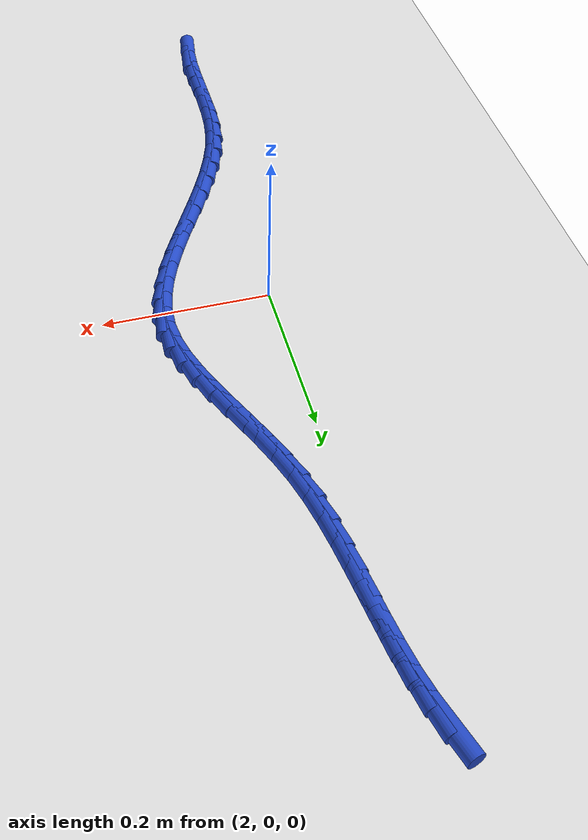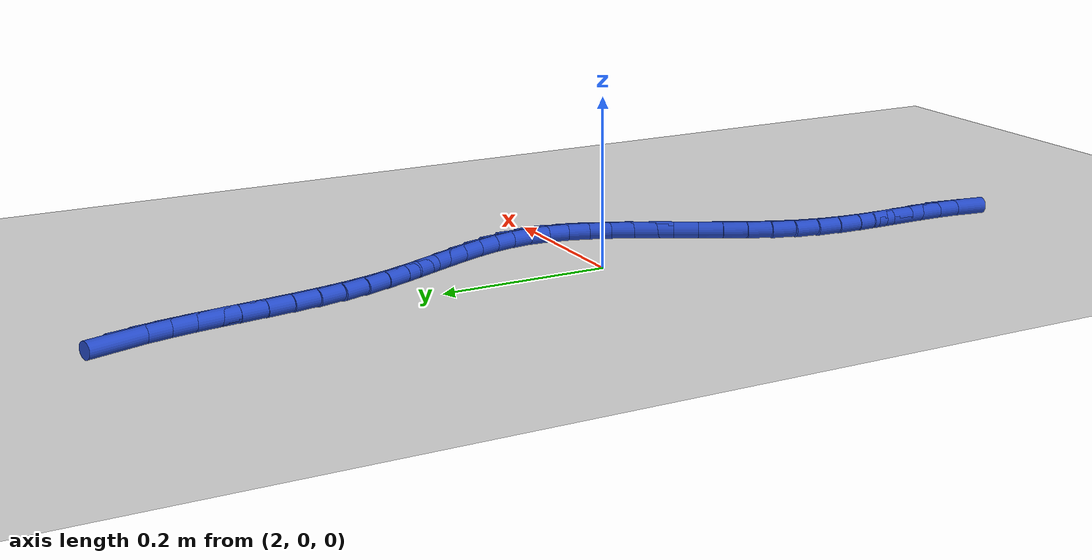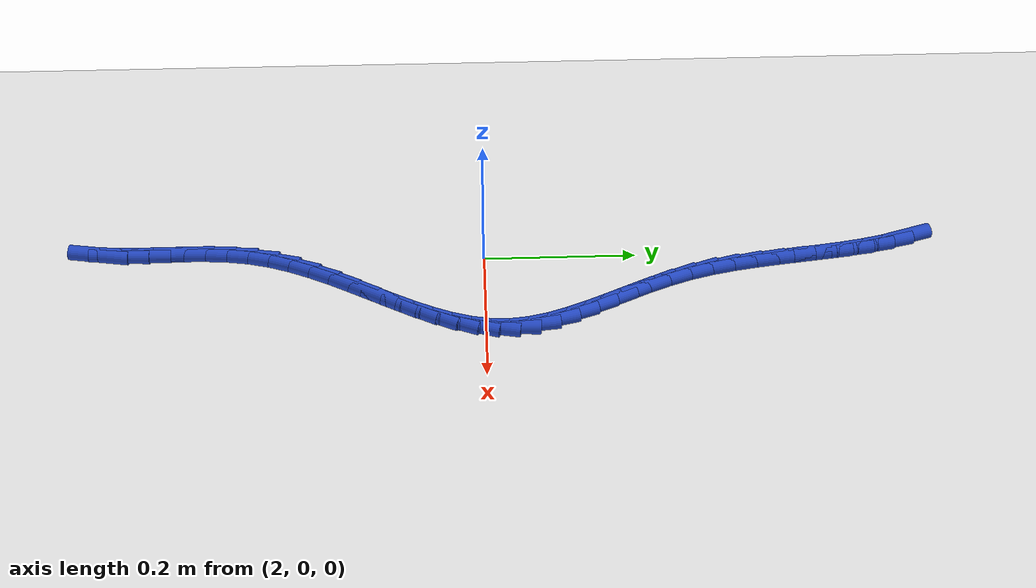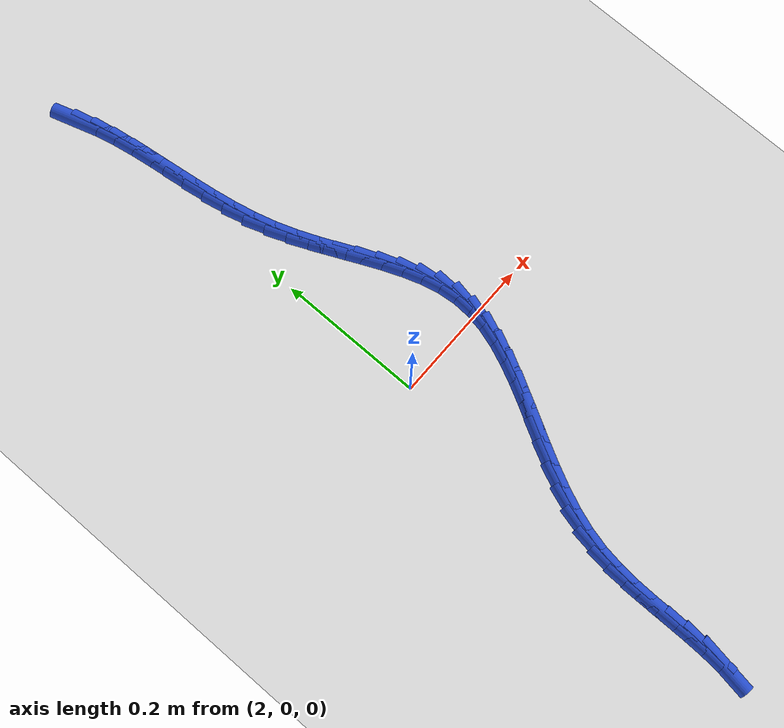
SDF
<sdf version="1.6">
 <world name="default">
  <model name="ground_plane">
   <static>1</static>
   <link name="link">
    <collision name="collision">
     <geometry><plane><normal>0 0 1</normal><size>100 100</size></plane></geometry>
     <surface><friction><ode><mu>100</mu><mu2>50</mu2></ode></friction></surface>
    </collision>
    <visual name="visual">
     <cast_shadows>0</cast_shadows>
     <geometry><plane><normal>0 0 1</normal><size>100 100</size></plane></geometry>
     <material>
      <script><uri>file://media/materials/scripts/gazebo.material</uri><name>Gazebo/WhiteGlow</name></script>
     </material>
    </visual>
   </link>
  </model>
  <model name="line">
   <link name="link_100">
    <pose>1.9871031348854646 0.5541055801154483 0.01 0 1.57 -1.270023676637597</pose>
    <collision name="collision">
     <geometry><cylinder><radius>0.01</radius><length>0.08</length></cylinder></geometry>
    </collision>
    <visual name="visual">
     <material>
      <script><name>Gazebo/Blue</name><uri>file://media/materials/scripts/gazebo.material</uri></script>
     </material>
     <geometry><cylinder><radius>0.01</radius><length>0.08</length></cylinder></geometry>
    </visual>
   </link>
   <link name="link_101">
    <pose>1.9949645032582954 0.5287612915799784 0.01 0 1.57 -1.3407908524117054</pose>
    <collision name="collision">
     <geometry><cylinder><radius>0.01</radius><length>0.08</length></cylinder></geometry>
    </collision>
    <visual name="visual">
     <material>
      <script><name>Gazebo/Blue</name><uri>file://media/materials/scripts/gazebo.material</uri></script>
     </material>
     <geometry><cylinder><radius>0.01</radius><length>0.08</length></cylinder></geometry>
    </visual>
   </link>
   <link name="link_102">
    <pose>2.0012184182161907 0.5020521819858373 0.01 0 1.57 -1.3911099683122694</pose>
    <collision name="collision">
     <geometry><cylinder><radius>0.01</radius><length>0.08</length></cylinder></geometry>
    </collision>
    <visual name="visual">
     <material>
      <script><name>Gazebo/Blue</name><uri>file://media/materials/scripts/gazebo.material</uri></script>
     </material>
     <geometry><cylinder><radius>0.01</radius><length>0.08</length></cylinder></geometry>
    </visual>
   </link>
   <link name="link_103">
    <pose>2.0062749421890165 0.4742148647698673 0.01 0 1.57 -1.4232731560652194</pose>
    <collision name="collision">
     <geometry><cylinder><radius>0.01</radius><length>0.08</length></cylinder></geometry>
    </collision>
    <visual name="visual">
     <material>
      <script><name>Gazebo/Blue</name><uri>file://media/materials/scripts/gazebo.material</uri></script>
     </material>
     <geometry><cylinder><radius>0.01</radius><length>0.08</length></cylinder></geometry>
    </visual>
   </link>
   <link name="link_104">
    <pose>2.01054413760664 0.4454859533689107 0.01 0 1.57 -1.4391117024080922</pose>
    <collision name="collision">
     <geometry><cylinder><radius>0.01</radius><length>0.08</length></cylinder></geometry>
    </collision>
    <visual name="visual">
     <material>
      <script><name>Gazebo/Blue</name><uri>file://media/materials/scripts/gazebo.material</uri></script>
     </material>
     <geometry><cylinder><radius>0.01</radius><length>0.08</length></cylinder></geometry>
    </visual>
   </link>
   <link name="link_105">
    <pose>2.0144360668989276 0.416102061219811 0.01 0 1.57 -1.4398575911494707</pose>
    <collision name="collision">
     <geometry><cylinder><radius>0.01</radius><length>0.08</length></cylinder></geometry>
    </collision>
    <visual name="visual">
     <material>
      <script><name>Gazebo/Blue</name><uri>file://media/materials/scripts/gazebo.material</uri></script>
     </material>
     <geometry><cylinder><radius>0.01</radius><length>0.08</length></cylinder></geometry>
    </visual>
   </link>
   <link name="link_106">
    <pose>2.0183607924957445 0.38629980175940987 0.01 0 1.57 -1.426149867807569</pose>
    <collision name="collision">
     <geometry><cylinder><radius>0.01</radius><length>0.08</length></cylinder></geometry>
    </collision>
    <visual name="visual">
     <material>
      <script><name>Gazebo/Blue</name><uri>file://media/materials/scripts/gazebo.material</uri></script>
     </material>
     <geometry><cylinder><radius>0.01</radius><length>0.08</length></cylinder></geometry>
    </visual>
   </link>
   <link name="link_107">
    <pose>2.022728376826959 0.35631578842455014 0.01 0 1.57 -1.398104969451155</pose>
    <collision name="collision">
     <geometry><cylinder><radius>0.01</radius><length>0.08</length></cylinder></geometry>
    </collision>
    <visual name="visual">
     <material>
      <script><name>Gazebo/Blue</name><uri>file://media/materials/scripts/gazebo.material</uri></script>
     </material>
     <geometry><cylinder><radius>0.01</radius><length>0.08</length></cylinder></geometry>
    </visual>
   </link>
   <link name="link_108">
    <pose>2.027948882322436 0.32638663465207374 0.01 0 1.57 -1.3554306923694825</pose>
    <collision name="collision">
     <geometry><cylinder><radius>0.01</radius><length>0.08</length></cylinder></geometry>
    </collision>
    <visual name="visual">
     <material>
      <script><name>Gazebo/Blue</name><uri>file://media/materials/scripts/gazebo.material</uri></script>
     </material>
     <geometry><cylinder><radius>0.01</radius><length>0.08</length></cylinder></geometry>
    </visual>
   </link>
   <link name="link_109">
    <pose>2.0344323714120427 0.29674895387882405 0.01 0 1.57 -1.2976013203889751</pose>
    <collision name="collision">
     <geometry><cylinder><radius>0.01</radius><length>0.08</length></cylinder></geometry>
    </collision>
    <visual name="visual">
     <material>
      <script><name>Gazebo/Blue</name><uri>file://media/materials/scripts/gazebo.material</uri></script>
     </material>
     <geometry><cylinder><radius>0.01</radius><length>0.08</length></cylinder></geometry>
    </visual>
   </link>
   <link name="link_110">
    <pose>2.042588906525645 0.26763935954164325 0.01 0 1.57 -1.2298372731214133</pose>
    <collision name="collision">
     <geometry><cylinder><radius>0.01</radius><length>0.08</length></cylinder></geometry>
    </collision>
    <visual name="visual">
     <material>
      <script><name>Gazebo/Blue</name><uri>file://media/materials/scripts/gazebo.material</uri></script>
     </material>
     <geometry><cylinder><radius>0.01</radius><length>0.08</length></cylinder></geometry>
    </visual>
   </link>
   <link name="link_111">
    <pose>2.0526633353952928 0.23924599445592137 0.01 0 1.57 -1.1767904609510649</pose>
    <collision name="collision">
     <geometry><cylinder><radius>0.01</radius><length>0.08</length></cylinder></geometry>
    </collision>
    <visual name="visual">
     <material>
      <script><name>Gazebo/Blue</name><uri>file://media/materials/scripts/gazebo.material</uri></script>
     </material>
     <geometry><cylinder><radius>0.01</radius><length>0.08</length></cylinder></geometry>
    </visual>
   </link>
   <link name="link_112">
    <pose>2.064179677665 0.2115455251831238 0.01 0 1.57 -1.1450026921496925</pose>
    <collision name="collision">
     <geometry><cylinder><radius>0.01</radius><length>0.08</length></cylinder></geometry>
    </collision>
    <visual name="visual">
     <material>
      <script><name>Gazebo/Blue</name><uri>file://media/materials/scripts/gazebo.material</uri></script>
     </material>
     <geometry><cylinder><radius>0.01</radius><length>0.08</length></cylinder></geometry>
    </visual>
   </link>
   <link name="link_113">
    <pose>2.076465417704851 0.1844569588452698 0.01 0 1.57 -1.1345079735834305</pose>
    <collision name="collision">
     <geometry><cylinder><radius>0.01</radius><length>0.08</length></cylinder></geometry>
    </collision>
    <visual name="visual">
     <material>
      <script><name>Gazebo/Blue</name><uri>file://media/materials/scripts/gazebo.material</uri></script>
     </material>
     <geometry><cylinder><radius>0.01</radius><length>0.08</length></cylinder></geometry>
    </visual>
   </link>
   <link name="link_114">
    <pose>2.08884803551193 0.15789930128142773 0.01 0 1.57 -1.14608086233653</pose>
    <collision name="collision">
     <geometry><cylinder><radius>0.01</radius><length>0.08</length></cylinder></geometry>
    </collision>
    <visual name="visual">
     <material>
      <script><name>Gazebo/Blue</name><uri>file://media/materials/scripts/gazebo.material</uri></script>
     </material>
     <geometry><cylinder><radius>0.01</radius><length>0.08</length></cylinder></geometry>
    </visual>
   </link>
   <link name="link_115">
    <pose>2.1006550110833198 0.13179155833066586 0.01 0 1.57 -1.1815030028557039</pose>
    <collision name="collision">
     <geometry><cylinder><radius>0.01</radius><length>0.08</length></cylinder></geometry>
    </collision>
    <visual name="visual">
     <material>
      <script><name>Gazebo/Blue</name><uri>file://media/materials/scripts/gazebo.material</uri></script>
     </material>
     <geometry><cylinder><radius>0.01</radius><length>0.08</length></cylinder></geometry>
    </visual>
   </link>
   <link name="link_116">
    <pose>2.111213824416103 0.10605273583205342 0.01 0 1.57 -1.243592330801454</pose>
    <collision name="collision">
     <geometry><cylinder><radius>0.01</radius><length>0.08</length></cylinder></geometry>
    </collision>
    <visual name="visual">
     <material>
      <script><name>Gazebo/Blue</name><uri>file://media/materials/scripts/gazebo.material</uri></script>
     </material>
     <geometry><cylinder><radius>0.01</radius><length>0.08</length></cylinder></geometry>
    </visual>
   </link>
   <link name="link_117">
    <pose>2.119851955507363 0.08060183962465882 0.01 0 1.57 -1.3357616536077086</pose>
    <collision name="collision">
     <geometry><cylinder><radius>0.01</radius><length>0.08</length></cylinder></geometry>
    </collision>
    <visual name="visual">
     <material>
      <script><name>Gazebo/Blue</name><uri>file://media/materials/scripts/gazebo.material</uri></script>
     </material>
     <geometry><cylinder><radius>0.01</radius><length>0.08</length></cylinder></geometry>
    </visual>
   </link>
   <link name="link_118">
    <pose>2.125896884354183 0.0553578755475507 0.01 0 1.57 -1.4605986670731048</pose>
    <collision name="collision">
     <geometry><cylinder><radius>0.01</radius><length>0.08</length></cylinder></geometry>
    </collision>
    <visual name="visual">
     <material>
      <script><name>Gazebo/Blue</name><uri>file://media/materials/scripts/gazebo.material</uri></script>
     </material>
     <geometry><cylinder><radius>0.01</radius><length>0.08</length></cylinder></geometry>
    </visual>
   </link>
   <link name="link_119">
    <pose>2.128676090953645 0.030239849439797357 0.01 0 1.57 1.5293416978469656</pose>
    <collision name="collision">
     <geometry><cylinder><radius>0.01</radius><length>0.08</length></cylinder></geometry>
    </collision>
    <visual name="visual">
     <material>
      <script><name>Gazebo/Blue</name><uri>file://media/materials/scripts/gazebo.material</uri></script>
     </material>
     <geometry><cylinder><radius>0.01</radius><length>0.08</length></cylinder></geometry>
    </visual>
   </link>
   <link name="link_120">
    <pose>2.127636255893484 0.005170529779674584 0.01 0 1.57 1.3885860308831348</pose>
    <collision name="collision">
     <geometry><cylinder><radius>0.01</radius><length>0.08</length></cylinder></geometry>
    </collision>
    <visual name="visual">
     <material>
      <script><name>Gazebo/Blue</name><uri>file://media/materials/scripts/gazebo.material</uri></script>
     </material>
     <geometry><cylinder><radius>0.01</radius><length>0.08</length></cylinder></geometry>
    </visual>
   </link>
   <link name="link_121">
    <pose>2.123016488028182 -0.01990230147391768 0.01 0 1.57 1.2756245637048258</pose>
    <collision name="collision">
     <geometry><cylinder><radius>0.01</radius><length>0.08</length></cylinder></geometry>
    </collision>
    <visual name="visual">
     <material>
      <script><name>Gazebo/Blue</name><uri>file://media/materials/scripts/gazebo.material</uri></script>
     </material>
     <geometry><cylinder><radius>0.01</radius><length>0.08</length></cylinder></geometry>
    </visual>
   </link>
   <link name="link_122">
    <pose>2.1153791548056526 -0.04502065850779593 0.01 0 1.57 1.1899742821322803</pose>
    <collision name="collision">
     <geometry><cylinder><radius>0.01</radius><length>0.08</length></cylinder></geometry>
    </collision>
    <visual name="visual">
     <material>
      <script><name>Gazebo/Blue</name><uri>file://media/materials/scripts/gazebo.material</uri></script>
     </material>
     <geometry><cylinder><radius>0.01</radius><length>0.08</length></cylinder></geometry>
    </visual>
   </link>
   <link name="link_123">
    <pose>2.1052875771359 -0.07022652541216544 0.01 0 1.57 1.129017345263599</pose>
    <collision name="collision">
     <geometry><cylinder><radius>0.01</radius><length>0.08</length></cylinder></geometry>
    </collision>
    <visual name="visual">
     <material>
      <script><name>Gazebo/Blue</name><uri>file://media/materials/scripts/gazebo.material</uri></script>
     </material>
     <geometry><cylinder><radius>0.01</radius><length>0.08</length></cylinder></geometry>
    </visual>
   </link>
   <link name="link_124">
    <pose>2.0933050759289262 -0.09556188627723153 0.01 0 1.57 1.0898416261258865</pose>
    <collision name="collision">
     <geometry><cylinder><radius>0.01</radius><length>0.08</length></cylinder></geometry>
    </collision>
    <visual name="visual">
     <material>
      <script><name>Gazebo/Blue</name><uri>file://media/materials/scripts/gazebo.material</uri></script>
     </material>
     <geometry><cylinder><radius>0.01</radius><length>0.08</length></cylinder></geometry>
    </visual>
   </link>
   <link name="link_125">
    <pose>2.0799949720947315 -0.1210687251932001 0.01 0 1.57 1.070098283755633</pose>
    <collision name="collision">
     <geometry><cylinder><radius>0.01</radius><length>0.08</length></cylinder></geometry>
    </collision>
    <visual name="visual">
     <material>
      <script><name>Gazebo/Blue</name><uri>file://media/materials/scripts/gazebo.material</uri></script>
     </material>
     <geometry><cylinder><radius>0.01</radius><length>0.08</length></cylinder></geometry>
    </visual>
   </link>
   <link name="link_126">
    <pose>2.0659205865433226 -0.14678902625027515 0.01 0 1.57 1.0682875997632608</pose>
    <collision name="collision">
     <geometry><cylinder><radius>0.01</radius><length>0.08</length></cylinder></geometry>
    </collision>
    <visual name="visual">
     <material>
      <script><name>Gazebo/Blue</name><uri>file://media/materials/scripts/gazebo.material</uri></script>
     </material>
     <geometry><cylinder><radius>0.01</radius><length>0.08</length></cylinder></geometry>
    </visual>
   </link>
   <link name="link_127">
    <pose>2.0516452401847003 -0.1727647735386626 0.01 0 1.57 1.0837883834766044</pose>
    <collision name="collision">
     <geometry><cylinder><radius>0.01</radius><length>0.08</length></cylinder></geometry>
    </collision>
    <visual name="visual">
     <material>
      <script><name>Gazebo/Blue</name><uri>file://media/materials/scripts/gazebo.material</uri></script>
     </material>
     <geometry><cylinder><radius>0.01</radius><length>0.08</length></cylinder></geometry>
    </visual>
   </link>
   <link name="link_128">
    <pose>2.037732253928867 -0.19903795114856776 0.01 0 1.57 1.1167837851365747</pose>
    <collision name="collision">
     <geometry><cylinder><radius>0.01</radius><length>0.08</length></cylinder></geometry>
    </collision>
    <visual name="visual">
     <material>
      <script><name>Gazebo/Blue</name><uri>file://media/materials/scripts/gazebo.material</uri></script>
     </material>
     <geometry><cylinder><radius>0.01</radius><length>0.08</length></cylinder></geometry>
    </visual>
   </link>
   <link name="link_129">
    <pose>2.024744948685826 -0.2256505431701959 0.01 0 1.57 1.1681146154270803</pose>
    <collision name="collision">
     <geometry><cylinder><radius>0.01</radius><length>0.08</length></cylinder></geometry>
    </collision>
    <visual name="visual">
     <material>
      <script><name>Gazebo/Blue</name><uri>file://media/materials/scripts/gazebo.material</uri></script>
     </material>
     <geometry><cylinder><radius>0.01</radius><length>0.08</length></cylinder></geometry>
    </visual>
   </link>
   <link name="link_130">
    <pose>2.0132466453655797 -0.2526445336937523 0.01 0 1.57 1.2390069883447714</pose>
    <collision name="collision">
     <geometry><cylinder><radius>0.01</radius><length>0.08</length></cylinder></geometry>
    </collision>
    <visual name="visual">
     <material>
      <script><name>Gazebo/Blue</name><uri>file://media/materials/scripts/gazebo.material</uri></script>
     </material>
     <geometry><cylinder><radius>0.01</radius><length>0.08</length></cylinder></geometry>
    </visual>
   </link>
   <link name="link_131">
    <pose>2.003800664878131 -0.28006190680944226 0.01 0 1.57 1.3303797048263288</pose>
    <collision name="collision">
     <geometry><cylinder><radius>0.01</radius><length>0.08</length></cylinder></geometry>
    </collision>
    <visual name="visual">
     <material>
      <script><name>Gazebo/Blue</name><uri>file://media/materials/scripts/gazebo.material</uri></script>
     </material>
     <geometry><cylinder><radius>0.01</radius><length>0.08</length></cylinder></geometry>
    </visual>
   </link>
   <link name="link_132">
    <pose>1.996965197318818 -0.307943757070951 0.01 0 1.57 1.4270359421169758</pose>
    <collision name="collision">
     <geometry><cylinder><radius>0.01</radius><length>0.08</length></cylinder></geometry>
    </collision>
    <visual name="visual">
     <material>
      <script><name>Gazebo/Blue</name><uri>file://media/materials/scripts/gazebo.material</uri></script>
     </material>
     <geometry><cylinder><radius>0.01</radius><length>0.08</length></cylinder></geometry>
    </visual>
   </link>
   <link name="link_133">
    <pose>1.9928666975510843 -0.3362563284904437 0.01 0 1.57 1.501370962863606</pose>
    <collision name="collision">
     <geometry><cylinder><radius>0.01</radius><length>0.08</length></cylinder></geometry>
    </collision>
    <visual name="visual">
     <material>
      <script><name>Gazebo/Blue</name><uri>file://media/materials/scripts/gazebo.material</uri></script>
     </material>
     <geometry><cylinder><radius>0.01</radius><length>0.08</length></cylinder></geometry>
    </visual>
   </link>
   <link name="link_134">
    <pose>1.9908793877854385 -0.3648354494520354 0.01 0 1.57 1.5506587647861148</pose>
    <collision name="collision">
     <geometry><cylinder><radius>0.01</radius><length>0.08</length></cylinder></geometry>
    </collision>
    <visual name="visual">
     <material>
      <script><name>Gazebo/Blue</name><uri>file://media/materials/scripts/gazebo.material</uri></script>
     </material>
     <geometry><cylinder><radius>0.01</radius><length>0.08</length></cylinder></geometry>
    </visual>
   </link>
   <link name="link_135">
    <pose>1.9903019978378609 -0.3935038601177237 0.01 0 1.57 -1.5662037186621223</pose>
    <collision name="collision">
     <geometry><cylinder><radius>0.01</radius><length>0.08</length></cylinder></geometry>
    </collision>
    <visual name="visual">
     <material>
      <script><name>Gazebo/Blue</name><uri>file://media/materials/scripts/gazebo.material</uri></script>
     </material>
     <geometry><cylinder><radius>0.01</radius><length>0.08</length></cylinder></geometry>
    </visual>
   </link>
   <link name="link_136">
    <pose>1.990433257524332 -0.42208430064950553 0.01 0 1.57 -1.565900088134308</pose>
    <collision name="collision">
     <geometry><cylinder><radius>0.01</radius><length>0.08</length></cylinder></geometry>
    </collision>
    <visual name="visual">
     <material>
      <script><name>Gazebo/Blue</name><uri>file://media/materials/scripts/gazebo.material</uri></script>
     </material>
     <geometry><cylinder><radius>0.01</radius><length>0.08</length></cylinder></geometry>
    </visual>
   </link>
   <link name="link_137">
    <pose>1.9905718966608321 -0.4503995112093783 0.01 0 1.57 1.5508779926520597</pose>
    <collision name="collision">
     <geometry><cylinder><radius>0.01</radius><length>0.08</length></cylinder></geometry>
    </collision>
    <visual name="visual">
     <material>
      <script><name>Gazebo/Blue</name><uri>file://media/materials/scripts/gazebo.material</uri></script>
     </material>
     <geometry><cylinder><radius>0.01</radius><length>0.08</length></cylinder></geometry>
    </visual>
   </link>
   <link name="link_138">
    <pose>1.9900166450633427 -0.4782722319593393 0.01 0 1.57 1.4993511691411618</pose>
    <collision name="collision">
     <geometry><cylinder><radius>0.01</radius><length>0.08</length></cylinder></geometry>
    </collision>
    <visual name="visual">
     <material>
      <script><name>Gazebo/Blue</name><uri>file://media/materials/scripts/gazebo.material</uri></script>
     </material>
     <geometry><cylinder><radius>0.01</radius><length>0.08</length></cylinder></geometry>
    </visual>
   </link>
   <link name="link_139">
    <pose>1.9880662325478442 -0.5055252030613859 0.01 0 1.57 1.4190076174183677</pose>
    <collision name="collision">
     <geometry><cylinder><radius>0.01</radius><length>0.08</length></cylinder></geometry>
    </collision>
    <visual name="visual">
     <material>
      <script><name>Gazebo/Blue</name><uri>file://media/materials/scripts/gazebo.material</uri></script>
     </material>
     <geometry><cylinder><radius>0.01</radius><length>0.08</length></cylinder></geometry>
    </visual>
   </link>
  </model>
 </world>
</sdf>
